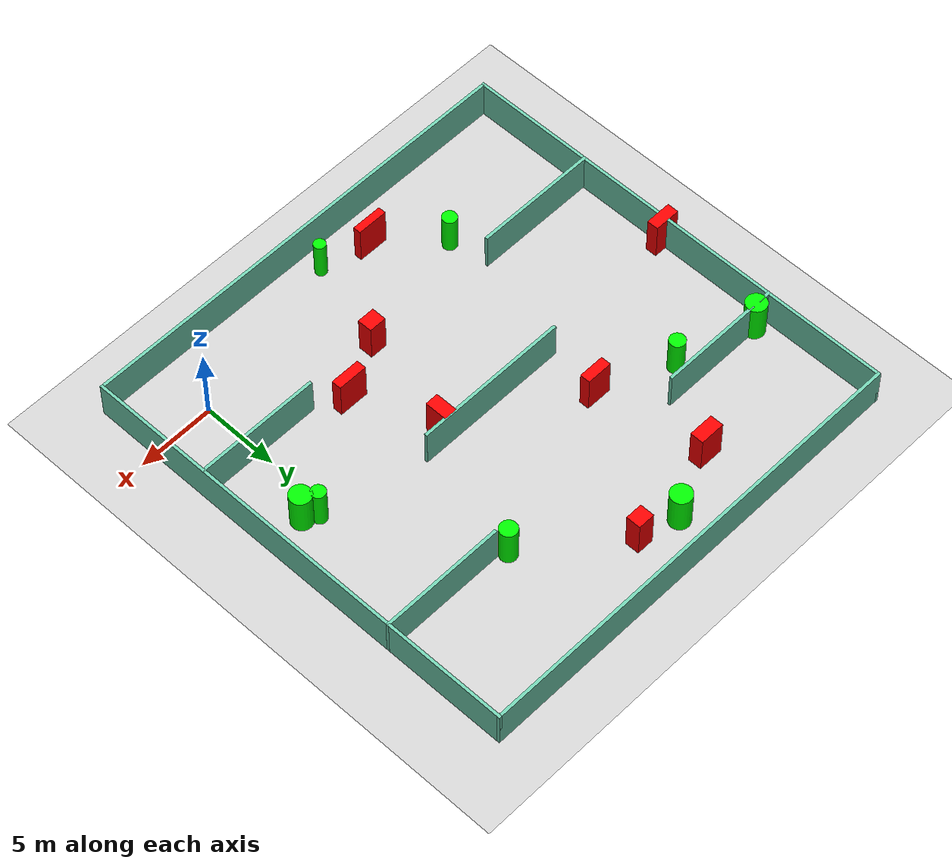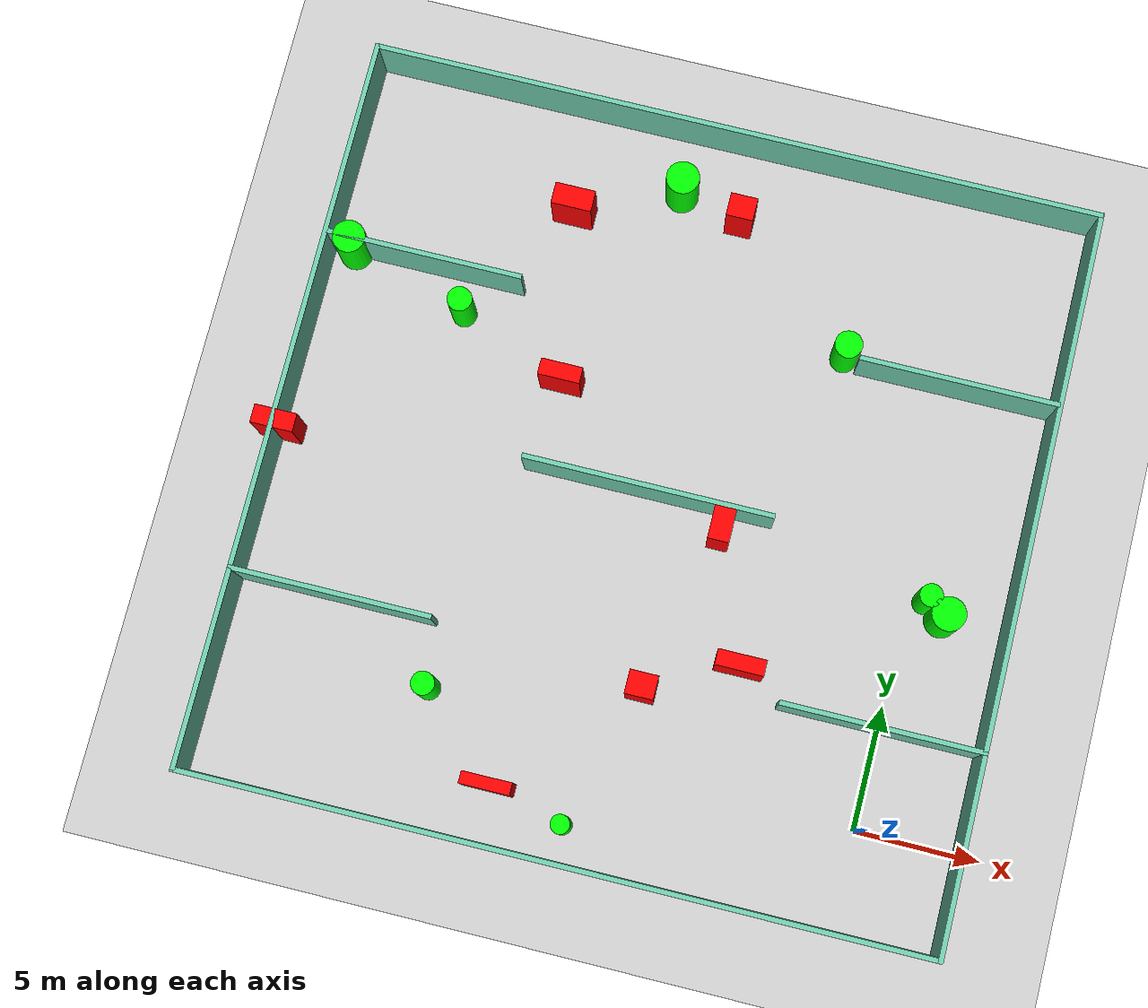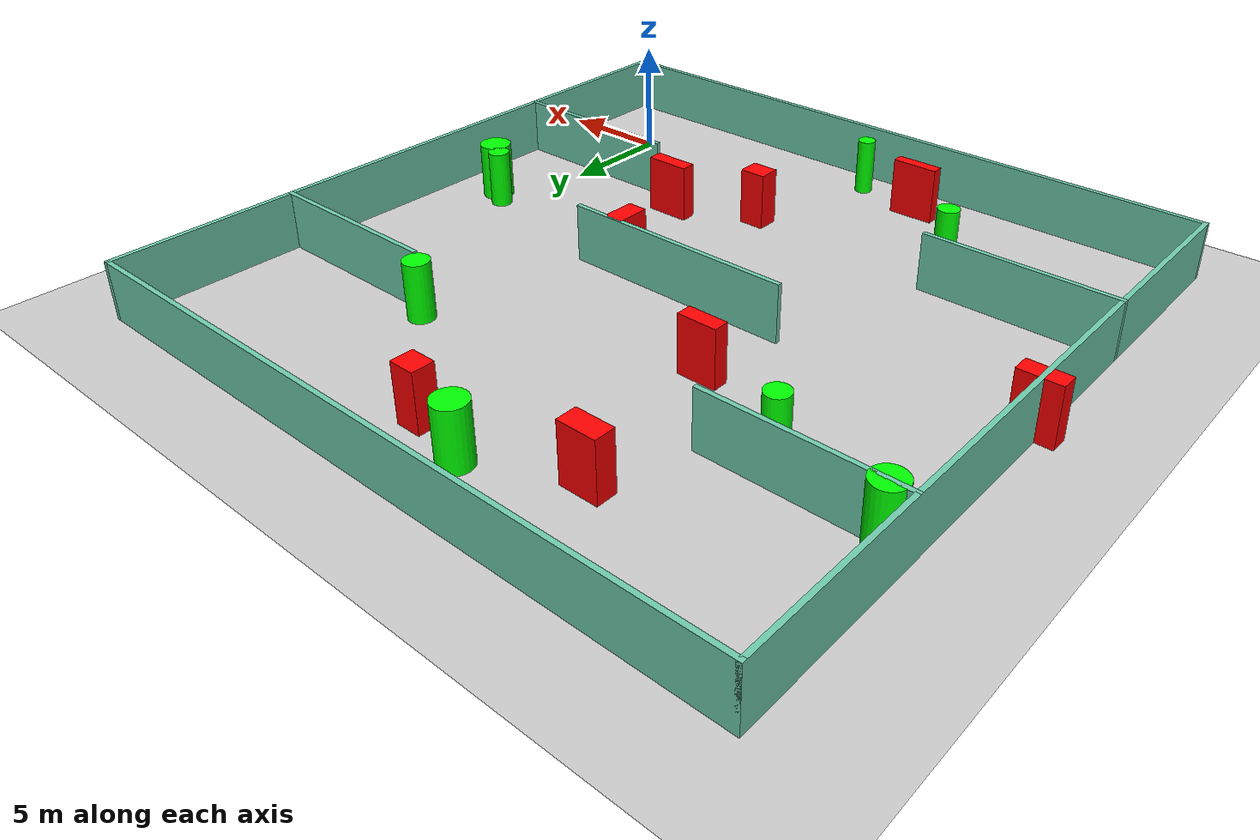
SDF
<sdf version="1.7">
 <world name="default">
  <light name="sun" type="directional">
   <pose>0 0 10 0 -0 0</pose>
   <diffuse>0.8 0.8 0.8 1</diffuse>
   <specular>0.2 0.2 0.2 1</specular>
   <attenuation>
    <range>1000</range>
    <constant>0.9</constant>
    <linear>0.01</linear>
    <quadratic>0.001</quadratic>
   </attenuation>
   <direction>-0.5 0.1 -0.9</direction>
   <spot><inner_angle>0</inner_angle><outer_angle>0</outer_angle><falloff>0</falloff></spot>
  </light>
  <model name="ground_plane">
   <static>1</static>
   <link name="link">
    <collision name="collision">
     <geometry><plane><normal>0 0 1</normal><size>100 100</size></plane></geometry>
     <surface>
      <contact><collide_bitmask>65535</collide_bitmask></contact>
      <friction><ode><mu>100</mu><mu2>50</mu2></ode></friction>
     </surface>
    </collision>
    <visual name="visual">
     <cast_shadows>0</cast_shadows>
     <geometry><plane><normal>0 0 1</normal><size>100 100</size></plane></geometry>
     <material>
      <script><uri>file://media/materials/scripts/gazebo.material</uri><name>Gazebo/Grey</name></script>
     </material>
    </visual>
   </link>
  </model>
  <gravity>0 0 -9.8</gravity>
  <magnetic_field>6e-06 2.3e-05 -4.2e-05</magnetic_field>
  <atmosphere type="adiabatic"/>
  <physics type="ode">
   <max_step_size>0.001</max_step_size>
   <real_time_factor>1</real_time_factor>
   <real_time_update_rate>1000</real_time_update_rate>
  </physics>
  <scene><ambient>0.4 0.4 0.4 1</ambient><background>0.7 0.7 0.7 1</background><shadows>1</shadows></scene>
  <spherical_coordinates>
   <surface_model>EARTH_WGS84</surface_model>
   <latitude_deg>0</latitude_deg>
   <longitude_deg>0</longitude_deg>
   <elevation>0</elevation>
   <heading_deg>0</heading_deg>
  </spherical_coordinates>
  <model name="my_base_walls">
   <link name="Wall_10">
    <collision name="Wall_10_Collision">
     <geometry><box><size>8.2 0.2 2.5</size></box></geometry>
     <pose>0 0 1.25 0 -0 0</pose>
    </collision>
    <visual name="Wall_10_Visual">
     <pose>0 0 1.25 0 -0 0</pose>
     <geometry><box><size>8.2 0.2 2.5</size></box></geometry>
     <material>
      <script><uri>file://media/materials/scripts/gazebo.material</uri><name>Gazebo/Grey</name></script>
      <ambient>0.435294 0.796078 0.67451 1</ambient>
     </material>
     <meta><layer>0</layer></meta>
    </visual>
    <pose>-11 -7 0 0 -0 0</pose>
   </link>
   <link name="Wall_12">
    <collision name="Wall_12_Collision">
     <geometry><box><size>8.2 0.2 2.5</size></box></geometry>
     <pose>0 0 1.25 0 -0 0</pose>
    </collision>
    <visual name="Wall_12_Visual">
     <pose>0 0 1.25 0 -0 0</pose>
     <geometry><box><size>8.2 0.2 2.5</size></box></geometry>
     <material>
      <script><uri>file://media/materials/scripts/gazebo.material</uri><name>Gazebo/Grey</name></script>
      <ambient>0.435294 0.796078 0.67451 1</ambient>
     </material>
     <meta><layer>0</layer></meta>
    </visual>
    <pose>-11 7 0 0 -0 0</pose>
   </link>
   <link name="Wall_14">
    <collision name="Wall_14_Collision">
     <geometry><box><size>8.2 0.2 2.5</size></box></geometry>
     <pose>0 0 1.25 0 -0 0</pose>
    </collision>
    <visual name="Wall_14_Visual">
     <pose>0 0 1.25 0 -0 0</pose>
     <geometry><box><size>8.2 0.2 2.5</size></box></geometry>
     <material>
      <script><uri>file://media/materials/scripts/gazebo.material</uri><name>Gazebo/Grey</name></script>
      <ambient>0.435294 0.796078 0.67451 1</ambient>
     </material>
     <meta><layer>0</layer></meta>
    </visual>
    <pose>11 7 0 0 -0 3.14159</pose>
   </link>
   <link name="Wall_16">
    <collision name="Wall_16_Collision">
     <geometry><box><size>10.2 0.2 2.5</size></box></geometry>
     <pose>0 0 1.25 0 -0 0</pose>
    </collision>
    <visual name="Wall_16_Visual">
     <pose>0 0 1.25 0 -0 0</pose>
     <geometry><box><size>10.2 0.2 2.5</size></box></geometry>
     <material>
      <script><uri>file://media/materials/scripts/gazebo.material</uri><name>Gazebo/Grey</name></script>
      <ambient>0.435294 0.796078 0.67451 1</ambient>
     </material>
     <meta><layer>0</layer></meta>
    </visual>
    <pose>0 0 0 0 -0 3.14159</pose>
   </link>
   <link name="Wall_2">
    <collision name="Wall_2_Collision">
     <geometry><box><size>30.2 0.2 2.5</size></box></geometry>
     <pose>0 0 1.25 0 -0 0</pose>
    </collision>
    <visual name="Wall_2_Visual">
     <pose>0 0 1.25 0 -0 0</pose>
     <geometry><box><size>30.2 0.2 2.5</size></box></geometry>
     <material>
      <script><uri>file://media/materials/scripts/gazebo.material</uri><name>Gazebo/Grey</name></script>
      <ambient>0.435294 0.796078 0.67451 1</ambient>
     </material>
     <meta><layer>0</layer></meta>
    </visual>
    <pose>0 -15 0 0 -0 3.14159</pose>
   </link>
   <link name="Wall_3">
    <collision name="Wall_3_Collision">
     <geometry><box><size>30.2 0.2 2.5</size></box></geometry>
     <pose>0 0 1.25 0 -0 0</pose>
    </collision>
    <visual name="Wall_3_Visual">
     <pose>0 0 1.25 0 -0 0</pose>
     <geometry><box><size>30.2 0.2 2.5</size></box></geometry>
     <material>
      <script><uri>file://media/materials/scripts/gazebo.material</uri><name>Gazebo/Grey</name></script>
      <ambient>0.435294 0.796078 0.67451 1</ambient>
     </material>
     <meta><layer>0</layer></meta>
    </visual>
    <pose>-15 0 0 0 -0 1.5708</pose>
   </link>
   <link name="Wall_4">
    <collision name="Wall_4_Collision">
     <geometry><box><size>30.2 0.2 2.5</size></box></geometry>
     <pose>0 0 1.25 0 -0 0</pose>
    </collision>
    <visual name="Wall_4_Visual">
     <pose>0 0 1.25 0 -0 0</pose>
     <geometry><box><size>30.2 0.2 2.5</size></box></geometry>
     <material>
      <script><uri>file://media/materials/scripts/gazebo.material</uri><name>Gazebo/Grey</name></script>
      <ambient>0.435294 0.796078 0.67451 1</ambient>
     </material>
     <meta><layer>0</layer></meta>
    </visual>
    <pose>0 15 0 0 -0 0</pose>
   </link>
   <link name="Wall_6">
    <collision name="Wall_6_Collision">
     <geometry><box><size>30.2 0.2 2.5</size></box></geometry>
     <pose>0 0 1.25 0 -0 0</pose>
    </collision>
    <visual name="Wall_6_Visual">
     <pose>0 0 1.25 0 -0 0</pose>
     <geometry><box><size>30.2 0.2 2.5</size></box></geometry>
     <material>
      <script><uri>file://media/materials/scripts/gazebo.material</uri><name>Gazebo/Grey</name></script>
      <ambient>0.435294 0.796078 0.67451 1</ambient>
     </material>
     <meta><layer>0</layer></meta>
    </visual>
    <pose>15 0 0 0 -0 1.5708</pose>
   </link>
   <link name="Wall_8">
    <collision name="Wall_8_Collision">
     <geometry><box><size>8.2 0.2 2.5</size></box></geometry>
     <pose>0 0 1.25 0 -0 0</pose>
    </collision>
    <visual name="Wall_8_Visual">
     <pose>0 0 1.25 0 -0 0</pose>
     <geometry><box><size>8.2 0.2 2.5</size></box></geometry>
     <material>
      <script><uri>file://media/materials/scripts/gazebo.material</uri><name>Gazebo/Grey</name></script>
      <ambient>0.435294 0.796078 0.67451 1</ambient>
     </material>
     <meta><layer>0</layer></meta>
    </visual>
    <pose>11 -7 0 0 -0 3.14159</pose>
   </link>
   <static>1</static>
   <pose>-11 11 0 0 -0 0</pose>
  </model>
  <model name="cylinder1">
   <static>1</static>
   <link name="link">
    <inertial>
     <mass>1</mass>
     <inertia><ixx>0.5</ixx><ixy>0</ixy><ixz>0</ixz><iyy>0.5</iyy><iyz>0</iyz><izz>1</izz></inertia>
    </inertial>
    <collision name="collision">
     <geometry><cylinder><radius>0.4714226070937189</radius><length>2.5</length></cylinder></geometry>
    </collision>
    <visual name="visual">
     <geometry><cylinder><radius>0.4714226070937189</radius><length>2.5</length></cylinder></geometry>
     <material>
      <ambient>0 1 0 1</ambient>
      <diffuse>0 1 0 1</diffuse>
      <specular>0.1 0.1 0.1 1</specular>
      <emissive>0 0 0 0</emissive>
     </material>
    </visual>
   </link>
   <pose>-17.57557594120097 1.4430434002729289 1.25 0 0 0</pose>
  </model>
  <model name="cylinder2">
   <static>1</static>
   <link name="link">
    <inertial>
     <mass>1</mass>
     <inertia><ixx>0.5</ixx><ixy>0</ixy><ixz>0</ixz><iyy>0.5</iyy><iyz>0</iyz><izz>1</izz></inertia>
    </inertial>
    <collision name="collision">
     <geometry><cylinder><radius>0.6854807830898715</radius><length>2.5</length></cylinder></geometry>
    </collision>
    <visual name="visual">
     <geometry><cylinder><radius>0.6854807830898715</radius><length>2.5</length></cylinder></geometry>
     <material>
      <ambient>0 1 0 1</ambient>
      <diffuse>0 1 0 1</diffuse>
      <specular>0.1 0.1 0.1 1</specular>
      <emissive>0 0 0 0</emissive>
     </material>
    </visual>
   </link>
   <pose>1.5024096877001085 8.883223042004646 1.25 0 0 0</pose>
  </model>
  <model name="cylinder3">
   <static>1</static>
   <link name="link">
    <inertial>
     <mass>1</mass>
     <inertia><ixx>0.5</ixx><ixy>0</ixy><ixz>0</ixz><iyy>0.5</iyy><iyz>0</iyz><izz>1</izz></inertia>
    </inertial>
    <collision name="collision">
     <geometry><cylinder><radius>0.5065884638128438</radius><length>2.5</length></cylinder></geometry>
    </collision>
    <visual name="visual">
     <geometry><cylinder><radius>0.5065884638128438</radius><length>2.5</length></cylinder></geometry>
     <material>
      <ambient>0 1 0 1</ambient>
      <diffuse>0 1 0 1</diffuse>
      <specular>0.1 0.1 0.1 1</specular>
      <emissive>0 0 0 0</emissive>
     </material>
    </visual>
   </link>
   <pose>-20.072941510051848 16.531835280056228 1.25 0 0 0</pose>
  </model>
  <model name="cylinder4">
   <static>1</static>
   <link name="link">
    <inertial>
     <mass>1</mass>
     <inertia><ixx>0.5</ixx><ixy>0</ixy><ixz>0</ixz><iyy>0.5</iyy><iyz>0</iyz><izz>1</izz></inertia>
    </inertial>
    <collision name="collision">
     <geometry><cylinder><radius>0.6795422057023136</radius><length>2.5</length></cylinder></geometry>
    </collision>
    <visual name="visual">
     <geometry><cylinder><radius>0.6795422057023136</radius><length>2.5</length></cylinder></geometry>
     <material>
      <ambient>0 1 0 1</ambient>
      <diffuse>0 1 0 1</diffuse>
      <specular>0.1 0.1 0.1 1</specular>
      <emissive>0 0 0 0</emissive>
     </material>
    </visual>
   </link>
   <pose>-12.637436737430164 23.528860622574953 1.25 0 0 0</pose>
  </model>
  <model name="cylinder5">
   <static>1</static>
   <link name="link">
    <inertial>
     <mass>1</mass>
     <inertia><ixx>0.5</ixx><ixy>0</ixy><ixz>0</ixz><iyy>0.5</iyy><iyz>0</iyz><izz>1</izz></inertia>
    </inertial>
    <collision name="collision">
     <geometry><cylinder><radius>0.6691293456111028</radius><length>2.5</length></cylinder></geometry>
    </collision>
    <visual name="visual">
     <geometry><cylinder><radius>0.6691293456111028</radius><length>2.5</length></cylinder></geometry>
     <material>
      <ambient>0 1 0 1</ambient>
      <diffuse>0 1 0 1</diffuse>
      <specular>0.1 0.1 0.1 1</specular>
      <emissive>0 0 0 0</emissive>
     </material>
    </visual>
   </link>
   <pose>-25.031594127891143 17.97095159044639 1.25 0 0 0</pose>
  </model>
  <model name="cylinder6">
   <static>1</static>
   <link name="link">
    <inertial>
     <mass>1</mass>
     <inertia><ixx>0.5</ixx><ixy>0</ixy><ixz>0</ixz><iyy>0.5</iyy><iyz>0</iyz><izz>1</izz></inertia>
    </inertial>
    <collision name="collision">
     <geometry><cylinder><radius>0.3861165389745289</radius><length>2.5</length></cylinder></geometry>
    </collision>
    <visual name="visual">
     <geometry><cylinder><radius>0.3861165389745289</radius><length>2.5</length></cylinder></geometry>
     <material>
      <ambient>0 1 0 1</ambient>
      <diffuse>0 1 0 1</diffuse>
      <specular>0.1 0.1 0.1 1</specular>
      <emissive>0 0 0 0</emissive>
     </material>
    </visual>
   </link>
   <pose>-11.13458874046103 -2.4859114913759663 1.25 0 0 0</pose>
  </model>
  <model name="cylinder7">
   <static>1</static>
   <link name="link">
    <inertial>
     <mass>1</mass>
     <inertia><ixx>0.5</ixx><ixy>0</ixy><ixz>0</ixz><iyy>0.5</iyy><iyz>0</iyz><izz>1</izz></inertia>
    </inertial>
    <collision name="collision">
     <geometry><cylinder><radius>0.4643299425639415</radius><length>2.5</length></cylinder></geometry>
    </collision>
    <visual name="visual">
     <geometry><cylinder><radius>0.4643299425639415</radius><length>2.5</length></cylinder></geometry>
     <material>
      <ambient>0 1 0 1</ambient>
      <diffuse>0 1 0 1</diffuse>
      <specular>0.1 0.1 0.1 1</specular>
      <emissive>0 0 0 0</emissive>
     </material>
    </visual>
   </link>
   <pose>0.6886031008714468 9.427098354427073 1.25 0 0 0</pose>
  </model>
  <model name="cylinder8">
   <static>1</static>
   <link name="link">
    <inertial>
     <mass>1</mass>
     <inertia><ixx>0.5</ixx><ixy>0</ixy><ixz>0</ixz><iyy>0.5</iyy><iyz>0</iyz><izz>1</izz></inertia>
    </inertial>
    <collision name="collision">
     <geometry><cylinder><radius>0.5592700558813986</radius><length>2.5</length></cylinder></geometry>
    </collision>
    <visual name="visual">
     <geometry><cylinder><radius>0.5592700558813986</radius><length>2.5</length></cylinder></geometry>
     <material>
      <ambient>0 1 0 1</ambient>
      <diffuse>0 1 0 1</diffuse>
      <specular>0.1 0.1 0.1 1</specular>
      <emissive>0 0 0 0</emissive>
     </material>
    </visual>
   </link>
   <pose>-4.639849155863105 18.402826484879945 1.25 0 0 0</pose>
  </model>
  <model name="box1">
   <static>1</static>
   <link name="link">
    <inertial>
     <mass>1</mass>
     <inertia><ixx>0.083</ixx><ixy>0</ixy><ixz>0</ixz><iyy>0.083</iyy><iyz>0</iyz><izz>0.083</izz></inertia>
    </inertial>
    <collision name="collision">
     <geometry><box><size>0.8702227222708587 1.4772002335862318 2.5</size></box></geometry>
    </collision>
    <visual name="visual">
     <geometry><box><size>0.8702227222708587 1.4772002335862318 2.5</size></box></geometry>
     <material>
      <ambient>1 0 0 1</ambient>
      <diffuse>1 0 0 1</diffuse>
      <specular>0.1 0.1 0.1 1</specular>
      <emissive>0 0 0 0</emissive>
     </material>
    </visual>
    <sensor name="my_contact" type="contact">
     <contact><collision>box_collision</collision><topic>__default_topic__</topic></contact>
    </sensor>
   </link>
   <pose>-7.840210238159585 10.286611614549749 1.25 0 0 0</pose>
  </model>
  <model name="box2">
   <static>1</static>
   <link name="link">
    <inertial>
     <mass>1</mass>
     <inertia><ixx>0.083</ixx><ixy>0</ixy><ixz>0</ixz><iyy>0.083</iyy><iyz>0</iyz><izz>0.083</izz></inertia>
    </inertial>
    <collision name="collision">
     <geometry><box><size>1.728764023065525 0.7527963706383523 2.5</size></box></geometry>
    </collision>
    <visual name="visual">
     <geometry><box><size>1.728764023065525 0.7527963706383523 2.5</size></box></geometry>
     <material>
      <ambient>1 0 0 1</ambient>
      <diffuse>1 0 0 1</diffuse>
      <specular>0.1 0.1 0.1 1</specular>
      <emissive>0 0 0 0</emissive>
     </material>
    </visual>
    <sensor name="my_contact" type="contact">
     <contact><collision>box_collision</collision><topic>__default_topic__</topic></contact>
    </sensor>
   </link>
   <pose>-25.947836654189903 10.114489284752517 1.25 0 0 0</pose>
  </model>
  <model name="box3">
   <static>1</static>
   <link name="link">
    <inertial>
     <mass>1</mass>
     <inertia><ixx>0.083</ixx><ixy>0</ixy><ixz>0</ixz><iyy>0.083</iyy><iyz>0</iyz><izz>0.083</izz></inertia>
    </inertial>
    <collision name="collision">
     <geometry><box><size>1.9537751367505534 0.6412188738403994 2.5</size></box></geometry>
    </collision>
    <visual name="visual">
     <geometry><box><size>1.9537751367505534 0.6412188738403994 2.5</size></box></geometry>
     <material>
      <ambient>1 0 0 1</ambient>
      <diffuse>1 0 0 1</diffuse>
      <specular>0.1 0.1 0.1 1</specular>
      <emissive>0 0 0 0</emissive>
     </material>
    </visual>
    <sensor name="my_contact" type="contact">
     <contact><collision>box_collision</collision><topic>__default_topic__</topic></contact>
    </sensor>
   </link>
   <pose>-5.874092718937778 5.141339276314373 1.25 0 0 0</pose>
  </model>
  <model name="box4">
   <static>1</static>
   <link name="link">
    <inertial>
     <mass>1</mass>
     <inertia><ixx>0.083</ixx><ixy>0</ixy><ixz>0</ixz><iyy>0.083</iyy><iyz>0</iyz><izz>0.083</izz></inertia>
    </inertial>
    <collision name="collision">
     <geometry><box><size>1.112374253668054 0.9491025332915611 2.5</size></box></geometry>
    </collision>
    <visual name="visual">
     <geometry><box><size>1.112374253668054 0.9491025332915611 2.5</size></box></geometry>
     <material>
      <ambient>1 0 0 1</ambient>
      <diffuse>1 0 0 1</diffuse>
      <specular>0.1 0.1 0.1 1</specular>
      <emissive>0 0 0 0</emissive>
     </material>
    </visual>
    <sensor name="my_contact" type="contact">
     <contact><collision>box_collision</collision><topic>__default_topic__</topic></contact>
    </sensor>
   </link>
   <pose>-10.054874213220026 22.916109600772856 1.25 0 0 0</pose>
  </model>
  <model name="box5">
   <static>1</static>
   <link name="link">
    <inertial>
     <mass>1</mass>
     <inertia><ixx>0.083</ixx><ixy>0</ixy><ixz>0</ixz><iyy>0.083</iyy><iyz>0</iyz><izz>0.083</izz></inertia>
    </inertial>
    <collision name="collision">
     <geometry><box><size>1.1486086279234988 0.9664858340860815 2.5</size></box></geometry>
    </collision>
    <visual name="visual">
     <geometry><box><size>1.1486086279234988 0.9664858340860815 2.5</size></box></geometry>
     <material>
      <ambient>1 0 0 1</ambient>
      <diffuse>1 0 0 1</diffuse>
      <specular>0.1 0.1 0.1 1</specular>
      <emissive>0 0 0 0</emissive>
     </material>
    </visual>
    <sensor name="my_contact" type="contact">
     <contact><collision>box_collision</collision><topic>__default_topic__</topic></contact>
    </sensor>
   </link>
   <pose>-9.389746863338999 3.40080140966492 1.25 0 0 0</pose>
  </model>
  <model name="box6">
   <static>1</static>
   <link name="link">
    <inertial>
     <mass>1</mass>
     <inertia><ixx>0.083</ixx><ixy>0</ixy><ixz>0</ixz><iyy>0.083</iyy><iyz>0</iyz><izz>0.083</izz></inertia>
    </inertial>
    <collision name="collision">
     <geometry><box><size>1.6506636648244206 0.8730550427488022 2.5</size></box></geometry>
    </collision>
    <visual name="visual">
     <geometry><box><size>1.6506636648244206 0.8730550427488022 2.5</size></box></geometry>
     <material>
      <ambient>1 0 0 1</ambient>
      <diffuse>1 0 0 1</diffuse>
      <specular>0.1 0.1 0.1 1</specular>
      <emissive>0 0 0 0</emissive>
     </material>
    </visual>
    <sensor name="my_contact" type="contact">
     <contact><collision>box_collision</collision><topic>__default_topic__</topic></contact>
    </sensor>
   </link>
   <pose>-16.718037633223847 21.702086614781585 1.25 0 0 0</pose>
  </model>
  <model name="box7">
   <static>1</static>
   <link name="link">
    <inertial>
     <mass>1</mass>
     <inertia><ixx>0.083</ixx><ixy>0</ixy><ixz>0</ixz><iyy>0.083</iyy><iyz>0</iyz><izz>0.083</izz></inertia>
    </inertial>
    <collision name="collision">
     <geometry><box><size>2.0224440196037268 0.5042507844315027 2.5</size></box></geometry>
    </collision>
    <visual name="visual">
     <geometry><box><size>2.0224440196037268 0.5042507844315027 2.5</size></box></geometry>
     <material>
      <ambient>1 0 0 1</ambient>
      <diffuse>1 0 0 1</diffuse>
      <specular>0.1 0.1 0.1 1</specular>
      <emissive>0 0 0 0</emissive>
     </material>
    </visual>
    <sensor name="my_contact" type="contact">
     <contact><collision>box_collision</collision><topic>__default_topic__</topic></contact>
    </sensor>
   </link>
   <pose>-14.276587279616747 -1.660011047921619 1.25 0 0 0</pose>
  </model>
  <model name="box8">
   <static>1</static>
   <link name="link">
    <inertial>
     <mass>1</mass>
     <inertia><ixx>0.083</ixx><ixy>0</ixy><ixz>0</ixz><iyy>0.083</iyy><iyz>0</iyz><izz>0.083</izz></inertia>
    </inertial>
    <collision name="collision">
     <geometry><box><size>1.7045673871118048 0.6606086604020953 2.5</size></box></geometry>
    </collision>
    <visual name="visual">
     <geometry><box><size>1.7045673871118048 0.6606086604020953 2.5</size></box></geometry>
     <material>
      <ambient>1 0 0 1</ambient>
      <diffuse>1 0 0 1</diffuse>
      <specular>0.1 0.1 0.1 1</specular>
      <emissive>0 0 0 0</emissive>
     </material>
    </visual>
    <sensor name="my_contact" type="contact">
     <contact><collision>box_collision</collision><topic>__default_topic__</topic></contact>
    </sensor>
   </link>
   <pose>-15.466472157467601 14.648412984863363 1.25 0 0 0</pose>
  </model>
 </world>
</sdf>
